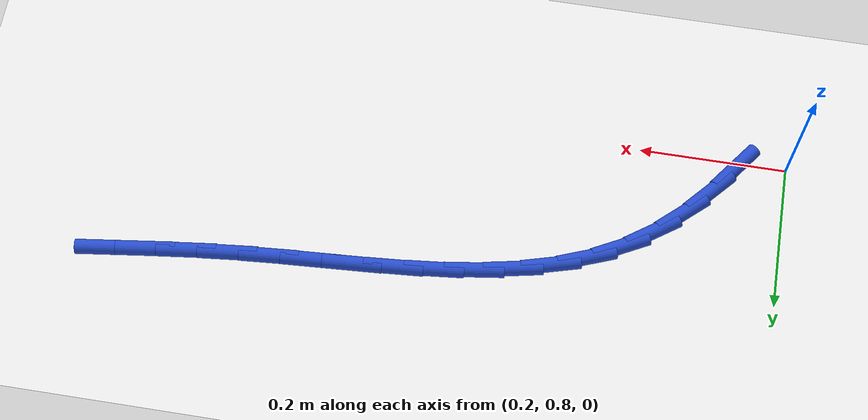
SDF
<sdf version="1.6">
 <world name="default">
  <model name="ground_plane">
   <static>1</static>
   <link name="link">
    <collision name="collision">
     <geometry><plane><normal>0 0 1</normal><size>100 100</size></plane></geometry>
     <surface><friction><ode><mu>100</mu><mu2>50</mu2></ode></friction></surface>
    </collision>
    <visual name="visual">
     <cast_shadows>0</cast_shadows>
     <geometry><plane><normal>0 0 1</normal><size>100 100</size></plane></geometry>
     <material>
      <script><uri>file://media/materials/scripts/gazebo.material</uri><name>Gazebo/WhiteGlow</name></script>
     </material>
    </visual>
   </link>
  </model>
  <model name="line">
   <link name="link_16">
    <pose>0.2695140600779057 0.8116411556881329 0.01 0 1.57 0.9286630868771775</pose>
    <collision name="collision">
     <geometry><cylinder><radius>0.01</radius><length>0.08</length></cylinder></geometry>
    </collision>
    <visual name="visual">
     <material>
      <script><name>Gazebo/Blue</name><uri>file://media/materials/scripts/gazebo.material</uri></script>
     </material>
     <geometry><cylinder><radius>0.01</radius><length>0.08</length></cylinder></geometry>
    </visual>
   </link>
   <link name="link_17">
    <pose>0.3003631332247054 0.85289068270295 0.01 0 1.57 0.8396404537288016</pose>
    <collision name="collision">
     <geometry><cylinder><radius>0.01</radius><length>0.08</length></cylinder></geometry>
    </collision>
    <visual name="visual">
     <material>
      <script><name>Gazebo/Blue</name><uri>file://media/materials/scripts/gazebo.material</uri></script>
     </material>
     <geometry><cylinder><radius>0.01</radius><length>0.08</length></cylinder></geometry>
    </visual>
   </link>
   <link name="link_18">
    <pose>0.33388636305987385 0.8902632382481699 0.01 0 1.57 0.735104179857981</pose>
    <collision name="collision">
     <geometry><cylinder><radius>0.01</radius><length>0.08</length></cylinder></geometry>
    </collision>
    <visual name="visual">
     <material>
      <script><name>Gazebo/Blue</name><uri>file://media/materials/scripts/gazebo.material</uri></script>
     </material>
     <geometry><cylinder><radius>0.01</radius><length>0.08</length></cylinder></geometry>
    </visual>
   </link>
   <link name="link_19">
    <pose>0.3703236696027404 0.9232080942530744 0.01 0 1.57 0.6149937343319832</pose>
    <collision name="collision">
     <geometry><cylinder><radius>0.01</radius><length>0.08</length></cylinder></geometry>
    </collision>
    <visual name="visual">
     <material>
      <script><name>Gazebo/Blue</name><uri>file://media/materials/scripts/gazebo.material</uri></script>
     </material>
     <geometry><cylinder><radius>0.01</radius><length>0.08</length></cylinder></geometry>
    </visual>
   </link>
   <link name="link_20">
    <pose>0.4099149728726343 0.9511745226469445 0.01 0 1.57 0.48525182381063026</pose>
    <collision name="collision">
     <geometry><cylinder><radius>0.01</radius><length>0.08</length></cylinder></geometry>
    </collision>
    <visual name="visual">
     <material>
      <script><name>Gazebo/Blue</name><uri>file://media/materials/scripts/gazebo.material</uri></script>
     </material>
     <geometry><cylinder><radius>0.01</radius><length>0.08</length></cylinder></geometry>
    </visual>
   </link>
   <link name="link_21">
    <pose>0.4528073591992297 0.9737918693611268 0.01 0 1.57 0.36862551900560253</pose>
    <collision name="collision">
     <geometry><cylinder><radius>0.01</radius><length>0.08</length></cylinder></geometry>
    </collision>
    <visual name="visual">
     <material>
      <script><name>Gazebo/Blue</name><uri>file://media/materials/scripts/gazebo.material</uri></script>
     </material>
     <geometry><cylinder><radius>0.01</radius><length>0.08</length></cylinder></geometry>
    </visual>
   </link>
   <link name="link_22">
    <pose>0.498716731414702 0.9915258678314155 0.01 0 1.57 0.2725160425857033</pose>
    <collision name="collision">
     <geometry><cylinder><radius>0.01</radius><length>0.08</length></cylinder></geometry>
    </collision>
    <visual name="visual">
     <material>
      <script><name>Gazebo/Blue</name><uri>file://media/materials/scripts/gazebo.material</uri></script>
     </material>
     <geometry><cylinder><radius>0.01</radius><length>0.08</length></cylinder></geometry>
    </visual>
   </link>
   <link name="link_23">
    <pose>0.5472338986674423 1.0050849017680448 0.01 0 1.57 0.1964346536146504</pose>
    <collision name="collision">
     <geometry><cylinder><radius>0.01</radius><length>0.08</length></cylinder></geometry>
    </collision>
    <visual name="visual">
     <material>
      <script><name>Gazebo/Blue</name><uri>file://media/materials/scripts/gazebo.material</uri></script>
     </material>
     <geometry><cylinder><radius>0.01</radius><length>0.08</length></cylinder></geometry>
    </visual>
   </link>
   <link name="link_24">
    <pose>0.5979496567933027 1.0151773807042255 0.01 0 1.57 0.1387898288342589</pose>
    <collision name="collision">
     <geometry><cylinder><radius>0.01</radius><length>0.08</length></cylinder></geometry>
    </collision>
    <visual name="visual">
     <material>
      <script><name>Gazebo/Blue</name><uri>file://media/materials/scripts/gazebo.material</uri></script>
     </material>
     <geometry><cylinder><radius>0.01</radius><length>0.08</length></cylinder></geometry>
    </visual>
   </link>
   <link name="link_25">
    <pose>0.6504548016281351 1.0225117141731677 0.01 0 1.57 0.09775856532160106</pose>
    <collision name="collision">
     <geometry><cylinder><radius>0.01</radius><length>0.08</length></cylinder></geometry>
    </collision>
    <visual name="visual">
     <material>
      <script><name>Gazebo/Blue</name><uri>file://media/materials/scripts/gazebo.material</uri></script>
     </material>
     <geometry><cylinder><radius>0.01</radius><length>0.08</length></cylinder></geometry>
    </visual>
   </link>
   <link name="link_26">
    <pose>0.7043401290077916 1.0277963117080828 0.01 0 1.57 0.07176021230202217</pose>
    <collision name="collision">
     <geometry><cylinder><radius>0.01</radius><length>0.08</length></cylinder></geometry>
    </collision>
    <visual name="visual">
     <material>
      <script><name>Gazebo/Blue</name><uri>file://media/materials/scripts/gazebo.material</uri></script>
     </material>
     <geometry><cylinder><radius>0.01</radius><length>0.08</length></cylinder></geometry>
    </visual>
   </link>
   <link name="link_27">
    <pose>0.7591964347681244 1.0317395828421805 0.01 0 1.57 0.05966329705790118</pose>
    <collision name="collision">
     <geometry><cylinder><radius>0.01</radius><length>0.08</length></cylinder></geometry>
    </collision>
    <visual name="visual">
     <material>
      <script><name>Gazebo/Blue</name><uri>file://media/materials/scripts/gazebo.material</uri></script>
     </material>
     <geometry><cylinder><radius>0.01</radius><length>0.08</length></cylinder></geometry>
    </visual>
   </link>
   <link name="link_28">
    <pose>0.8146145147449855 1.0350499371086717 0.01 0 1.57 0.060853462610211406</pose>
    <collision name="collision">
     <geometry><cylinder><radius>0.01</radius><length>0.08</length></cylinder></geometry>
    </collision>
    <visual name="visual">
     <material>
      <script><name>Gazebo/Blue</name><uri>file://media/materials/scripts/gazebo.material</uri></script>
     </material>
     <geometry><cylinder><radius>0.01</radius><length>0.08</length></cylinder></geometry>
    </visual>
   </link>
   <link name="link_29">
    <pose>0.8701851647742274 1.0384357840407672 0.01 0 1.57 0.0752409222329639</pose>
    <collision name="collision">
     <geometry><cylinder><radius>0.01</radius><length>0.08</length></cylinder></geometry>
    </collision>
    <visual name="visual">
     <material>
      <script><name>Gazebo/Blue</name><uri>file://media/materials/scripts/gazebo.material</uri></script>
     </material>
     <geometry><cylinder><radius>0.01</radius><length>0.08</length></cylinder></geometry>
    </visual>
   </link>
   <link name="link_30">
    <pose>0.9254991806917017 1.0426055331716773 0.01 0 1.57 0.09961316940062143</pose>
    <collision name="collision">
     <geometry><cylinder><radius>0.01</radius><length>0.08</length></cylinder></geometry>
    </collision>
    <visual name="visual">
     <material>
      <script><name>Gazebo/Blue</name><uri>file://media/materials/scripts/gazebo.material</uri></script>
     </material>
     <geometry><cylinder><radius>0.01</radius><length>0.08</length></cylinder></geometry>
    </visual>
   </link>
   <link name="link_31">
    <pose>0.9802142159601525 1.0480739705986826 0.01 0 1.57 0.11894641381810851</pose>
    <collision name="collision">
     <geometry><cylinder><radius>0.01</radius><length>0.08</length></cylinder></geometry>
    </collision>
    <visual name="visual">
     <material>
      <script><name>Gazebo/Blue</name><uri>file://media/materials/scripts/gazebo.material</uri></script>
     </material>
     <geometry><cylinder><radius>0.01</radius><length>0.08</length></cylinder></geometry>
    </visual>
   </link>
   <link name="link_32">
    <pose>1.0342715806587541 1.054534396954338 0.01 0 1.57 0.12897646220863757</pose>
    <collision name="collision">
     <geometry><cylinder><radius>0.01</radius><length>0.08</length></cylinder></geometry>
    </collision>
    <visual name="visual">
     <material>
      <script><name>Gazebo/Blue</name><uri>file://media/materials/scripts/gazebo.material</uri></script>
     </material>
     <geometry><cylinder><radius>0.01</radius><length>0.08</length></cylinder></geometry>
    </visual>
   </link>
   <link name="link_33">
    <pose>1.0876877986815856 1.0614622894462864 0.01 0 1.57 0.1294226590567539</pose>
    <collision name="collision">
     <geometry><cylinder><radius>0.01</radius><length>0.08</length></cylinder></geometry>
    </collision>
    <visual name="visual">
     <material>
      <script><name>Gazebo/Blue</name><uri>file://media/materials/scripts/gazebo.material</uri></script>
     </material>
     <geometry><cylinder><radius>0.01</radius><length>0.08</length></cylinder></geometry>
    </visual>
   </link>
  </model>
 </world>
</sdf>
